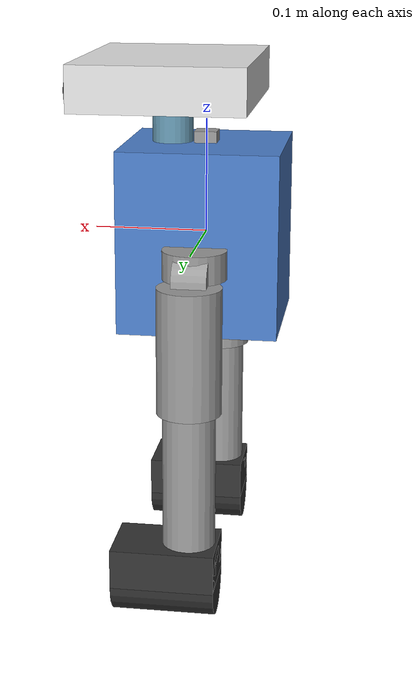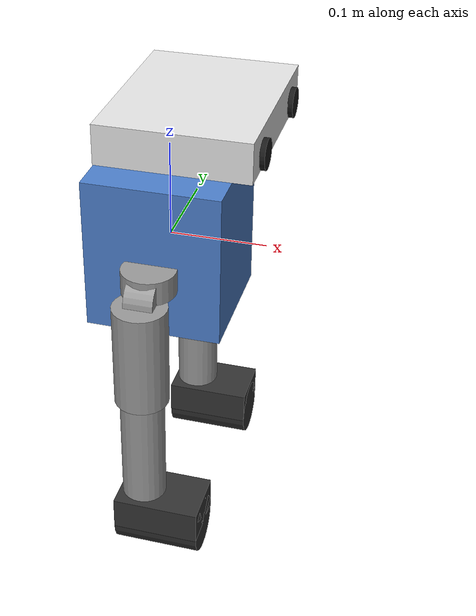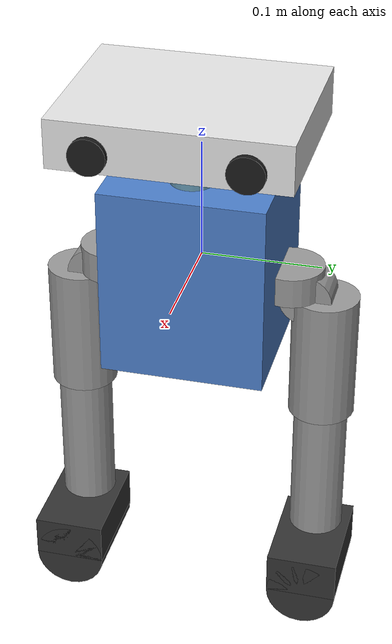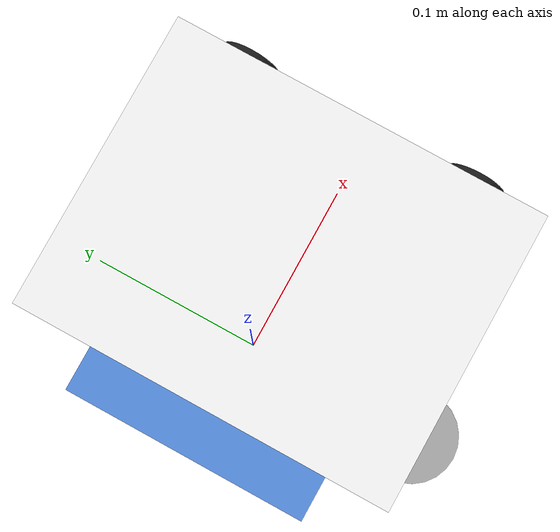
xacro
<?xml version="1.0"?>
<robot name="bsl_droid_simplified_v2" xmlns:xacro="http://www.ros.org/wiki/xacro">

  <!-- リンク長パラメータ -->
  <!-- 胴体 -->
  <xacro:property name="torso_width" value="0.135" />     <!-- 胴体幅（左右） [m] V2: 75% of V1 -->
  <xacro:property name="torso_depth" value="0.14" />      <!-- 胴体奥行（前後） [m] -->
  <xacro:property name="torso_height" value="0.16" />     <!-- 胴体高さ [m] -->

  <!-- 脚部 -->
  <xacro:property name="hip_offset_y" value="0.075" />    <!-- 胴体中心から股関節ヨー軸までの距離 [m] V2: 75% of V1 -->
  <xacro:property name="hip_yaw_length" value="0.025" />  <!-- ヨー軸リンク長 [m] -->
  <xacro:property name="hip_roll_length" value="0.03" />  <!-- ロール軸リンク長（外側へ） [m] -->
  <xacro:property name="thigh_length" value="0.11" />     <!-- 大腿部長さ [m] -->
  <xacro:property name="shank_length" value="0.12" />     <!-- 下腿部長さ [m] -->

  <!-- 足部 -->
  <xacro:property name="foot_length" value="0.09" />      <!-- 足部長さ（前後） [m] -->
  <xacro:property name="foot_width" value="0.06" />       <!-- 足部幅（左右） [m] -->
  <xacro:property name="foot_height" value="0.035" />     <!-- 足部高さ [m] -->
  <xacro:property name="ankle_offset_x" value="0.02" />   <!-- 足首位置: 足後端から中心寄り [m] -->

  <xacro:property name="neck_length" value="0.035" />     <!-- 首の長さ [m] -->
  <xacro:property name="neck_radius" value="0.018" />     <!-- 首の半径 [m] -->
  <xacro:property name="head_width" value="0.19" />       <!-- 顔の幅 [m] -->
  <xacro:property name="head_height" value="0.04" />      <!-- 顔の高さ [m] -->
  <xacro:property name="head_depth" value="0.15" />       <!-- 顔の厚さ（前後） [m] -->
  <xacro:property name="eye_radius" value="0.015" />      <!-- 目の半径 [m] -->
  <xacro:property name="eye_spacing" value="0.12" />      <!-- 目の間隔 [m] -->

  <!-- 視覚的なリンク半径 -->
  <xacro:property name="thigh_radius" value="0.028" />
  <xacro:property name="shank_radius" value="0.023" />

  <!-- マテリアル定義 -->
  <material name="torso_color">
    <color rgba="0.3 0.5 0.8 1.0"/>
  </material>

  <material name="leg_color">
    <color rgba="0.6 0.6 0.6 1.0"/>
  </material>

  <material name="foot_color">
    <color rgba="0.2 0.2 0.2 1.0"/>
  </material>

  <material name="neck_color">
    <color rgba="0.4 0.6 0.7 1.0"/>
  </material>

  <material name="head_color">
    <color rgba="0.9 0.9 0.9 1.0"/>
  </material>

  <material name="eye_color">
    <color rgba="0.1 0.1 0.1 1.0"/>
  </material>

  <!-- Base Link (胴体) -->
  <link name="base_link">
    <visual>
      <origin xyz="0 0 0" rpy="0 0 0"/>
      <geometry>
        <box size="${torso_depth} ${torso_width} ${torso_height}"/>
      </geometry>
      <material name="torso_color"/>
    </visual>
    <collision>
      <origin xyz="0 0 0" rpy="0 0 0"/>
      <geometry>
        <box size="${torso_depth} ${torso_width} ${torso_height}"/>
      </geometry>
    </collision>
    <inertial>
      <mass value="3.2"/>
      <origin xyz="0 0 0" rpy="0 0 0"/>
      <inertia ixx="0.05" ixy="0" ixz="0" iyy="0.038" iyz="0" izz="0.029"/>
    </inertial>
  </link>

  <!-- IMU Link -->
  <link name="imu_link">
    <visual>
      <origin xyz="0 0 0" rpy="0 0 0"/>
      <geometry>
        <box size="0.02 0.02 0.01"/>
      </geometry>
      <material name="leg_color"/>
    </visual>
    <inertial>
      <mass value="0.01"/>
      <origin xyz="0 0 0" rpy="0 0 0"/>
      <inertia ixx="1e-6" ixy="0" ixz="0" iyy="1e-6" iyz="0" izz="1e-6"/>
    </inertial>
  </link>

  <joint name="imu_joint" type="fixed">
    <parent link="base_link"/>
    <child link="imu_link"/>
    <!-- IMUは胴体上面中央に配置 -->
    <origin xyz="0 0 ${torso_height/2 + 0.005}" rpy="0 0 0"/>
  </joint>

  <link name="neck_link">
    <visual>
      <origin xyz="0 0 ${neck_length/2}" rpy="0 0 0"/>
      <geometry>
        <cylinder radius="${neck_radius}" length="${neck_length}"/>
      </geometry>
      <material name="neck_color"/>
    </visual>
    <collision>
      <origin xyz="0 0 ${neck_length/2}" rpy="0 0 0"/>
      <geometry>
        <cylinder radius="${neck_radius}" length="${neck_length}"/>
      </geometry>
    </collision>
    <inertial>
      <mass value="0.15"/>
      <origin xyz="0 0 ${neck_length/2}" rpy="0 0 0"/>
      <inertia ixx="0.0003" ixy="0" ixz="0" iyy="0.0003" iyz="0" izz="0.0001"/>
    </inertial>
  </link>

  <joint name="neck_joint" type="fixed">
    <parent link="base_link"/>
    <child link="neck_link"/>
    <!-- 胴体前方・上面から首が生える（X方向を後ろに調整） -->
    <origin xyz="${torso_depth/2 - 0.04} 0 ${torso_height/2}" rpy="0 0 0"/>
  </joint>

  <link name="head_link">
    <visual>
      <origin xyz="0 0 0" rpy="0 0 0"/>
      <geometry>
        <box size="${head_depth} ${head_width} ${head_height}"/>
      </geometry>
      <material name="head_color"/>
    </visual>
    <collision>
      <origin xyz="0 0 0" rpy="0 0 0"/>
      <geometry>
        <box size="${head_depth} ${head_width} ${head_height}"/>
      </geometry>
    </collision>
    <inertial>
      <mass value="0.35"/>
      <origin xyz="0 0 0" rpy="0 0 0"/>
      <inertia ixx="0.0012" ixy="0" ixz="0" iyy="0.0018" iyz="0" izz="0.0015"/>
    </inertial>
  </link>

  <joint name="head_joint" type="fixed">
    <parent link="neck_link"/>
    <child link="head_link"/>
    <origin xyz="0 0 ${neck_length + head_height/2}" rpy="0 0 0"/>
  </joint>

  <!-- 左目 -->
  <link name="left_eye_link">
    <visual>
      <origin xyz="0 0 0" rpy="0 ${pi/2} 0"/>
      <geometry>
        <cylinder radius="${eye_radius}" length="0.005"/>
      </geometry>
      <material name="eye_color"/>
    </visual>
    <inertial>
      <mass value="0.001"/>
      <origin xyz="0 0 0" rpy="0 0 0"/>
      <inertia ixx="1e-7" ixy="0" ixz="0" iyy="1e-7" iyz="0" izz="1e-7"/>
    </inertial>
  </link>

  <joint name="left_eye_joint" type="fixed">
    <parent link="head_link"/>
    <child link="left_eye_link"/>
    <origin xyz="${head_depth/2 + 0.003} ${eye_spacing/2} -0.005" rpy="0 0 0"/>
  </joint>

  <!-- 右目 -->
  <link name="right_eye_link">
    <visual>
      <origin xyz="0 0 0" rpy="0 ${pi/2} 0"/>
      <geometry>
        <cylinder radius="${eye_radius}" length="0.005"/>
      </geometry>
      <material name="eye_color"/>
    </visual>
    <inertial>
      <mass value="0.001"/>
      <origin xyz="0 0 0" rpy="0 0 0"/>
      <inertia ixx="1e-7" ixy="0" ixz="0" iyy="1e-7" iyz="0" izz="1e-7"/>
    </inertial>
  </link>

  <joint name="right_eye_joint" type="fixed">
    <parent link="head_link"/>
    <child link="right_eye_link"/>
    <origin xyz="${head_depth/2 + 0.003} ${-eye_spacing/2} -0.005" rpy="0 0 0"/>
  </joint>

  <!-- 脚マクロ定義 -->
  <xacro:macro name="leg" params="side reflect">

    <!--
      関節命名規則:
      - 左脚 (side=left, reflect=1):  j11, j12, j13, j14, j15
      - 右脚 (side=right, reflect=-1): j21, j22, j23, j24, j25
    -->

    <!-- j11/j21: Hip Yaw Joint (股関節ヨー) -->
    <joint name="${side}_hip_yaw_joint" type="revolute">
      <parent link="base_link"/>
      <child link="${side}_hip_yaw_link"/>
      <!-- 胴体側面の中央部から生える: Y方向にオフセット、Z=0（胴体中央高さ） -->
      <origin xyz="0 ${reflect * hip_offset_y} 0" rpy="0 0 0"/>
      <axis xyz="0 0 1"/>  <!-- Z軸回転（ヨー） -->
      <limit lower="${-30 * pi / 180}" upper="${30 * pi / 180}" effort="50" velocity="5"/>
      <dynamics damping="0.1" friction="0.1"/>
    </joint>

    <link name="${side}_hip_yaw_link">
      <visual>
        <origin xyz="0 0 ${-hip_yaw_length/2}" rpy="0 0 0"/>
        <geometry>
          <cylinder radius="0.028" length="${hip_yaw_length}"/>
        </geometry>
        <material name="leg_color"/>
      </visual>
      <inertial>
        <mass value="0.25"/>
        <origin xyz="0 0 ${-hip_yaw_length/2}" rpy="0 0 0"/>
        <inertia ixx="0.0008" ixy="0" ixz="0" iyy="0.0008" iyz="0" izz="0.0005"/>
      </inertial>
    </link>

    <!-- j12/j22: Hip Roll Joint (股関節ロール) -->
    <joint name="${side}_hip_roll_joint" type="revolute">
      <parent link="${side}_hip_yaw_link"/>
      <child link="${side}_hip_roll_link"/>
      <origin xyz="0 0 ${-hip_yaw_length}" rpy="0 0 0"/>
      <axis xyz="1 0 0"/>  <!-- X軸回転（ロール） -->
      <limit lower="${-25 * pi / 180}" upper="${25 * pi / 180}" effort="50" velocity="5"/>
      <dynamics damping="0.1" friction="0.1"/>
    </joint>

    <link name="${side}_hip_roll_link">
      <visual>
        <origin xyz="0 ${reflect * hip_roll_length/2} 0" rpy="0 ${pi/2} 0"/>
        <geometry>
          <cylinder radius="0.022" length="${hip_roll_length}"/>
        </geometry>
        <material name="leg_color"/>
      </visual>
      <inertial>
        <mass value="0.18"/>
        <origin xyz="0 ${reflect * hip_roll_length/2} 0" rpy="0 0 0"/>
        <inertia ixx="0.0005" ixy="0" ixz="0" iyy="0.0005" iyz="0" izz="0.0003"/>
      </inertial>
    </link>

    <!-- j13/j23: Hip Pitch Joint (股関節ピッチ) -->
    <joint name="${side}_hip_pitch_joint" type="revolute">
      <parent link="${side}_hip_roll_link"/>
      <child link="${side}_thigh_link"/>
      <origin xyz="0 ${reflect * hip_roll_length} 0" rpy="0 0 0"/>
      <axis xyz="0 1 0"/>  <!-- Y軸回転（ピッチ） -->
      <limit lower="${-120 * pi / 180}" upper="${90 * pi / 180}" effort="100" velocity="10"/>
      <dynamics damping="0.2" friction="0.15"/>
    </joint>

    <link name="${side}_thigh_link">
      <visual>
        <origin xyz="0 0 ${-thigh_length/2}" rpy="0 0 0"/>
        <geometry>
          <cylinder radius="${thigh_radius}" length="${thigh_length}"/>
        </geometry>
        <material name="leg_color"/>
      </visual>
      <collision>
        <origin xyz="0 0 ${-thigh_length/2}" rpy="0 0 0"/>
        <geometry>
          <cylinder radius="${thigh_radius}" length="${thigh_length}"/>
        </geometry>
      </collision>
      <inertial>
        <mass value="0.7"/>
        <origin xyz="0 0 ${-thigh_length/2}" rpy="0 0 0"/>
        <inertia ixx="0.005" ixy="0" ixz="0" iyy="0.005" iyz="0" izz="0.0008"/>
      </inertial>
    </link>

    <!-- j14/j24: Knee Pitch Joint (膝ピッチ) - 逆関節：負角度で後方に曲がる -->
    <joint name="${side}_knee_pitch_joint" type="revolute">
      <parent link="${side}_thigh_link"/>
      <child link="${side}_shank_link"/>
      <origin xyz="0 0 ${-thigh_length}" rpy="0 0 0"/>
      <axis xyz="0 1 0"/>  <!-- Y軸回転（ピッチ）- 他のピッチ軸と統一 -->
      <!-- 逆関節: 負の角度で後方屈曲（Unitree/ANYmal等と同じ規約） -->
      <limit lower="${-150 * pi / 180}" upper="${0 * pi / 180}" effort="100" velocity="10"/>
      <dynamics damping="0.2" friction="0.15"/>
    </joint>

    <link name="${side}_shank_link">
      <visual>
        <origin xyz="0 0 ${-shank_length/2}" rpy="0 0 0"/>
        <geometry>
          <cylinder radius="${shank_radius}" length="${shank_length}"/>
        </geometry>
        <material name="leg_color"/>
      </visual>
      <collision>
        <origin xyz="0 0 ${-shank_length/2}" rpy="0 0 0"/>
        <geometry>
          <cylinder radius="${shank_radius}" length="${shank_length}"/>
        </geometry>
      </collision>
      <inertial>
        <mass value="0.5"/>
        <origin xyz="0 0 ${-shank_length/2}" rpy="0 0 0"/>
        <inertia ixx="0.003" ixy="0" ixz="0" iyy="0.003" iyz="0" izz="0.0005"/>
      </inertial>
    </link>

    <!-- j15/j25: Ankle Pitch Joint (足首ピッチ) -->
    <joint name="${side}_ankle_pitch_joint" type="revolute">
      <parent link="${side}_shank_link"/>
      <child link="${side}_foot_link"/>
      <!-- 足首は足の後端から少し中心寄り -->
      <origin xyz="0 0 ${-shank_length}" rpy="0 0 0"/>
      <axis xyz="0 1 0"/>  <!-- Y軸回転（ピッチ） -->
      <limit lower="${-90 * pi / 180}" upper="${90 * pi / 180}" effort="50" velocity="10"/>
      <dynamics damping="0.1" friction="0.1"/>
    </joint>

    <link name="${side}_foot_link">
      <!-- 足裏は半円状（かまぼこ型） - ロール関節を代替 -->
      <!-- 足首関節位置から後方へ少しオフセット、前方へ伸びる形状 -->
      <visual>
        <!-- メインの足部本体（直方体） -->
        <origin xyz="${ankle_offset_x} 0 ${-foot_height/2}" rpy="0 0 0"/>
        <geometry>
          <box size="${foot_length} ${foot_width} ${foot_height}"/>
        </geometry>
        <material name="foot_color"/>
      </visual>
      <visual>
        <!-- 足裏の半円形状（Y軸方向に円筒を配置） -->
        <origin xyz="${ankle_offset_x} 0 ${-foot_height}" rpy="0 ${pi/2} 0"/>
        <geometry>
          <cylinder radius="${foot_width/2}" length="${foot_length}"/>
        </geometry>
        <material name="foot_color"/>
      </visual>
      <collision>
        <!-- 接地用の半円形状 -->
        <origin xyz="${ankle_offset_x} 0 ${-foot_height}" rpy="0 ${pi/2} 0"/>
        <geometry>
          <cylinder radius="${foot_width/2}" length="${foot_length}"/>
        </geometry>
      </collision>
      <inertial>
        <mass value="0.25"/>
        <origin xyz="${ankle_offset_x} 0 ${-foot_height/2}" rpy="0 0 0"/>
        <inertia ixx="0.0008" ixy="0" ixz="0" iyy="0.0008" iyz="0" izz="0.0006"/>
      </inertial>
    </link>

  </xacro:macro>

  <!-- 左右の脚を生成 -->
  <xacro:leg side="left" reflect="1"/>
  <xacro:leg side="right" reflect="-1"/>

</robot>
